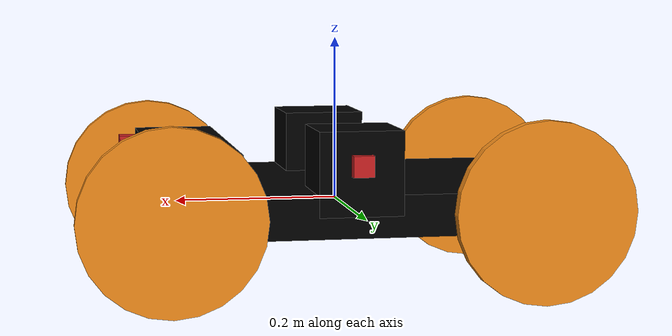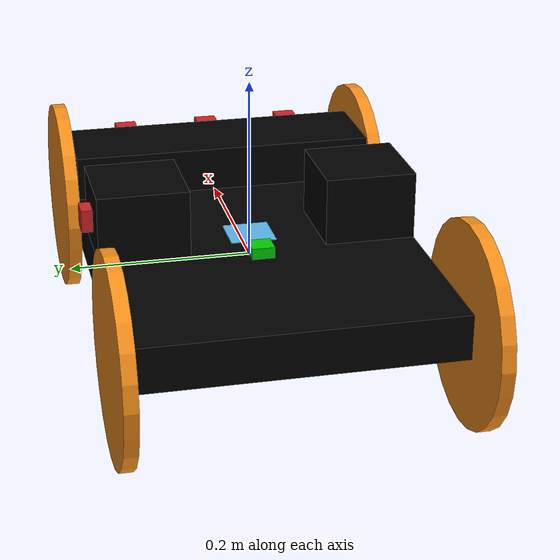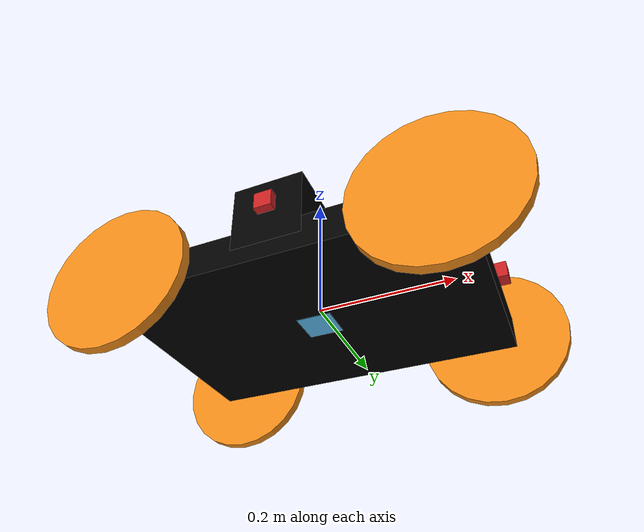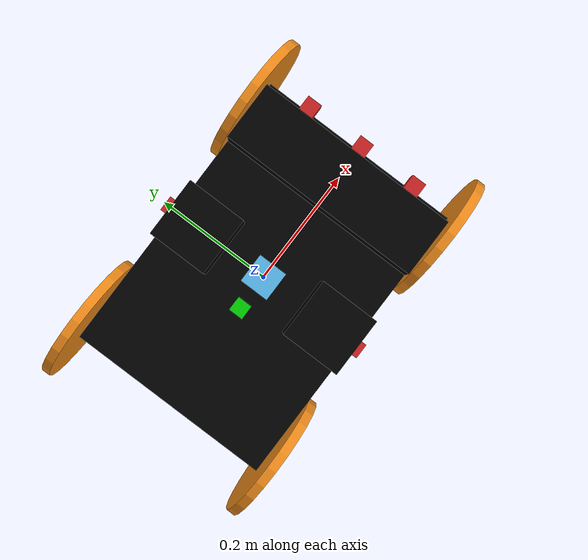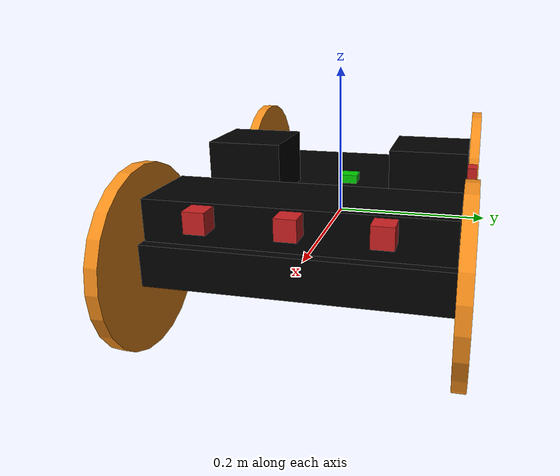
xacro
<?xml version="1.0" ?>

<robot name="robot_1" xmlns:xacro="https://www.ros.org/wiki/xacro" >

  <!-- Defining global properties of robot -->

  <xacro:property name="wheel_r" value="0.11"/>
  <xacro:property name="wheel_w" value="0.015"/>
  <xacro:property name="body_h" value="0.05"/>
  <xacro:property name="body_w" value="0.35"/>
  <xacro:property name="body_l" value="0.5"/>

  <!-- Including xacro files for plugins, macros, and materials -->

  <xacro:include filename = "$(find robot_1_description)/urdf/materials.xacro"/>
  <xacro:include filename = "$(find robot_1_description)/urdf/macros.xacro"/>
  <xacro:include filename = "$(find robot_1_description)/urdf/plugins/camera.xacro"/>
  <xacro:include filename = "$(find robot_1_description)/urdf/plugins/skid_steer_drive.xacro"/>
  <xacro:include filename = "$(find robot_1_description)/urdf/plugins/imu.xacro"/>
  <xacro:include filename = "$(find robot_1_description)/urdf/plugins/lazer_sensor.xacro"/>
  <xacro:include filename = "$(find robot_1_description)/urdf/plugins/kinect.xacro"/>
  <xacro:include filename = "$(find robot_1_description)/urdf/plugins/gps.xacro"/>
  <xacro:include filename = "$(find robot_1_description)/urdf/plugins/ultrasonic_sensor.xacro"/>

  <!-- Making the body of the 4 wheeled robot -->

  <gazebo reference="link_chassis">
    <material>Gazebo/Black</material>
    <mu1>0.2</mu1>
    <mu2>0.2</mu2>
  </gazebo>

  <link name="link_chassis">

    <visual>
      <geometry>
        <box size="${body_l} ${body_w} ${body_h}"/>
      </geometry>
      <material name="black"/>
    </visual>

    <collision>
      <geometry>
        <box size="${body_l} ${body_w} ${body_h}"/>
      </geometry>
    </collision>

    <inertial>
      <mass value="1"/>
      <inertia
        ixy="0"
        ixz="0"
        iyy="${(1/12) * (body_l * body_l + body_h * body_h)}"
        ixx="${(1/12) * ((body_w * body_w) + (body_h * body_h))}"
        iyz="0"
        izz="${(1/12) * (body_w * body_w + body_l * body_l)}"/>
    </inertial>

  </link>

  <!-- Linking and joining Front Right wheel -->

  <xacro:wheel_linking name = "FR_wheel" radius = "${wheel_r}" width = "${wheel_w}" mass = "0.3"/>

  <joint name = "FR_joint" type = "continuous">
    <parent link = "link_chassis"/>
    <child link = "FR_wheel"/>
    <axis xyz = "0 0 1"/>
    <origin xyz="${body_l/2 - 0.03} -${body_w/2 + wheel_w/2} 0" rpy="${pi/2} 0 0" />
    <dynamic friction="0.1"/>
  </joint>

  <!-- Linking and joining Front Left wheel -->

  <xacro:wheel_linking name = "FL_wheel" radius = "${wheel_r}" width = "${wheel_w}" mass = "0.3"/>

  <joint name = "FL_joint" type = "continuous">
    <parent link = "link_chassis"/>
    <child link = "FL_wheel"/>
    <axis xyz = "0 0 1"/>
    <origin xyz="${body_l/2 - 0.03} ${body_w/2 + wheel_w/2} 0" rpy="${pi/2} 0 0" />
    <dynamic friction="0.1"/>
  </joint>

  <!-- Linking and joining Back Right wheel -->

  <xacro:wheel_linking name = "BR_wheel" radius = "${wheel_r}" width = "${wheel_w}" mass = "0.3"/>

  <joint name = "BR_joint" type = "continuous">
    <parent link = "link_chassis"/>
    <child link = "BR_wheel"/>
    <axis xyz = "0 0 1"/>
    <origin xyz="-${body_l/2 - 0.03} -${body_w/2 + wheel_w/2} 0" rpy="${pi/2} 0 0" />
    <dynamic friction="0.1"/>
  </joint>

  <!-- Linking and joining Back Left wheel -->

  <xacro:wheel_linking name = "BL_wheel" radius = "${wheel_r}" width = "${wheel_w}" mass = "0.3"/>

  <joint name = "BL_joint" type = "continuous">
    <parent link = "link_chassis"/>
    <child link = "BL_wheel"/>
    <axis xyz = "0 0 1"/>
    <origin xyz="-${body_l/2 - 0.03} ${body_w/2 + wheel_w/2} 0" rpy="${pi/2} 0 0" />
    <dynamic friction="0.1"/>
  </joint>

  <!-- linking and joining for elevating front sensors -->

  <gazebo reference="front_sensor_base">
    <material>Gazebo/Black</material>
    <mu1>0.2</mu1>
    <mu2>0.2</mu2>
  </gazebo>

  <link name="front_sensor_base">

    <visual>
      <geometry>
        <box size="${body_l / 5} ${body_w - 0.003} ${body_h}"/>
      </geometry>
      <material name="black"/>
    </visual>

    <collision>
      <geometry>
        <box size="${body_l / 5} ${body_w - 0.003} ${body_h}"/>
      </geometry>
    </collision>

    <inertial>
      <mass value="1"/>
      <inertia
        ixy="0"
        ixz="0"
        iyy="${(1/12) * (body_l / 5 * body_l / 5 + (body_h)* (body_h))}"
        ixx="${(1/12) * (((body_w - 0.003) * (body_w - 0.003)) + ((body_h) * (body_h)))}"
        iyz="0"
        izz="${(1/12) * ((body_w - 0.003) * (body_w - 0.003) + body_l / 5 * body_l / 5)}"/>
    </inertial>

  </link>

  <joint name = "front_sensor_base_joint" type = "fixed">
    <parent link = "link_chassis"/>
    <child link = "front_sensor_base"/>
    <axis xyz = "0 1 0"/>
    <origin xyz="${body_l/2 - (body_l / 10) - 0.0125} 0 ${body_h / 2 + ((body_h) / 2)}" rpy="0 0 0" />
  </joint>

  <!-- linking and joining for elevating right sensors -->

  <gazebo reference="right_sensor_base">
    <material>Gazebo/Black</material>
    <mu1>0.2</mu1>
    <mu2>0.2</mu2>
  </gazebo>

  <link name="right_sensor_base">

    <visual>
      <geometry>
        <box size="${body_l / 5} ${body_l / 5} ${body_l / 5}"/>
      </geometry>
      <material name="black"/>
    </visual>

    <collision>
      <geometry>
        <box size="${body_l / 5} ${body_l / 5} ${body_l / 5}"/>
      </geometry>
    </collision>

    <inertial>
      <mass value="1"/>
      <inertia
        ixy="0"
        ixz="0"
        iyy="${(1/12) * ((body_l / 5 * body_l / 5) + (body_l / 5 * body_l / 5))}"
        ixx="${(1/12) * ((body_l / 5 * body_l / 5) + (body_l / 5 * body_l / 5))}"
        iyz="0"
        izz="${(1/12) * ((body_l / 5 * body_l / 5) + (body_l / 5 * body_l / 5))}"/>
    </inertial>

  </link>

  <joint name = "right_sensor_base_joint" type = "fixed">
    <parent link = "link_chassis"/>
    <child link = "right_sensor_base"/>
    <axis xyz = "0 1 0"/>
    <origin xyz="0 ${body_w / 2 - body_l / 10} ${body_h / 2 + ((body_h) / 2)}" rpy="0 0 0" />
  </joint>

  <!-- linking and joining for elevating left sensors -->

  <gazebo reference="left_sensor_base">
    <material>Gazebo/Black</material>
    <mu1>0.2</mu1>
    <mu2>0.2</mu2>
  </gazebo>

  <link name="left_sensor_base">

    <visual>
      <geometry>
        <box size="${body_l / 5} ${body_l / 5} ${body_l / 5}"/>
      </geometry>
      <material name="black"/>
    </visual>

    <collision>
      <geometry>
        <box size="${body_l / 5} ${body_l / 5} ${body_l / 5}"/>
      </geometry>
    </collision>

    <inertial>
      <mass value="1"/>
      <inertia
        ixy="0"
        ixz="0"
        iyy="${(1/12) * ((body_l / 5 * body_l / 5) + (body_l / 5 * body_l / 5))}"
        ixx="${(1/12) * ((body_l / 5 * body_l / 5) + (body_l / 5 * body_l / 5))}"
        iyz="0"
        izz="${(1/12) * ((body_l / 5 * body_l / 5) + (body_l / 5 * body_l / 5))}"/>
    </inertial>

  </link>

  <joint name = "left_sensor_base_joint" type = "fixed">
    <parent link = "link_chassis"/>
    <child link = "left_sensor_base"/>
    <axis xyz = "0 1 0"/>
    <origin xyz="0 -${body_w / 2 - body_l / 10} ${body_h / 2 + ((body_h) / 2)}" rpy="0 0 0" />
  </joint>

</robot>

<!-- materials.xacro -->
<robot name="robot_1" xmlns:xacro="https://www.ros.org/wiki/xacro">

  <material name="black">
    <color rgba="0.0 0.0 0.0 1.0"/>
  </material>
    <material name="white">
    <color rgba="1.0 1.0 1.0 1.0"/>
  </material>
  <material name="blue">
    <color rgba="0.203125 0.23828125 0.28515625 1.0"/>
  </material>
  <material name="green">
    <color rgba="0.0 0.8 0.0 1.0"/>
  </material>
  <material name="orange">
    <color rgba="1.0 0.423529411765 0.0392156862745 1.0"/>
  </material>
  <material name="red">
    <color rgba="0.80078125 0.12890625 0.1328125 1.0"/>
  </material>

</robot>

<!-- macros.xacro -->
<robot xmlns:xacro="https://www.ros.org/wiki/xacro">

    <!-- Macro for linking wheel -->

    <xacro:macro name="wheel_linking" params="name radius width mass">
        <gazebo reference="${name}">
            <material>Gazebo/Orange</material>
            <mu1>0.8</mu1>
            <mu2>0.8</mu2>
        </gazebo>

        <link name="${name}">

            <visual>
                <geometry>
                    <cylinder length =" ${width}" radius = "${radius}"/>
                </geometry>
            </visual>

            <collision>
                <geometry>
                    <cylinder length=  "${width}" radius = "${radius}"/>
                </geometry>
            </collision>

            <inertial>
                <mass value = "${mass}"/>
                <inertia ixx="${(1/12) * mass * (3 * radius * radius + width * width)}" ixy="0" ixz="0" iyy="${(1/12) * mass * (3 * radius * radius + width * width)}" iyz="0" izz="${(1/2) * mass * radius * radius}"/>
            </inertial>

        </link>

    </xacro:macro>

</robot>

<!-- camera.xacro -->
<robot xmlns:xacro = "https://www.ros.org/wiki/xacro">

  <xacro:property name="camera_size" value="0.025"/>

  <!-- Camera -->

    <link name="camera_link">
        <collision>
          <origin xyz="0 0 0" rpy="0 0 0"/>
          <geometry>
            <box size="${camera_size} ${camera_size} ${camera_size}"/>
          </geometry>
        </collision>

    <visual>
      <origin xyz="0 0 0" rpy="0 0 0"/>
      <geometry>
        <box size="${camera_size} ${camera_size} ${camera_size}"/>
      </geometry>
      <material name="red"/>
    </visual>

    <inertial>
      <mass value="0.5" />
      <origin xyz="0 0 0" rpy="0 0 0"/>
      <inertia ixx="${(camera_size * camera_size) / 6}" ixy="0" ixz="0" iyy="${(camera_size * camera_size) / 6}" iyz="0" izz="${(camera_size * camera_size) / 6}" />
    </inertial>
  </link>

  <!-- Joint -->

  <joint name="camera_joint" type="fixed">
    <axis xyz="0 1 0" />
    <origin xyz="${(body_l / 2)} -0.1 0.06" rpy="0 0 0"/>
    <parent link="link_chassis"/>
    <child link="camera_link"/>
  </joint>

  <!-- Gazebo tags -->

  <gazebo reference="camera_link">
    <material>Gazebo/Red</material>
    <sensor type="camera" name="camera">

      <update_rate>30.0</update_rate>

      <camera name="head">
        <horizontal_fov>1.3962634</horizontal_fov>
        <image>
          <width>800</width>
          <height>800</height>
          <format>R8G8B8</format>
        </image>
        <clip>
          <near>0.02</near>
          <far>300</far>
        </clip>
        <noise>
          <type>gaussian</type>
          <mean>0.0</mean>
          <stddev>0.007</stddev>
        </noise>
      </camera>

      <plugin name="camera_controller" filename="libgazebo_ros_camera.so">
        <alwaysOn>true</alwaysOn>
        <updateRate>0.0</updateRate>
        <cameraName>robot_1/camera</cameraName>
        <imageTopicName>image_raw</imageTopicName>
        <cameraInfoTopicName>camera_info</cameraInfoTopicName>
        <frameName>camera_link</frameName>
        <hackBaseline>0.07</hackBaseline>
        <distortionK1>0.0</distortionK1>
        <distortionK2>0.0</distortionK2>
        <distortionK3>0.0</distortionK3>
        <distortionT1>0.0</distortionT1>
        <distortionT2>0.0</distortionT2>
      </plugin>

    </sensor>

  </gazebo>

</robot>

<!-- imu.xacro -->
<robot xmlns:xacro = "https://www.ros.org/wiki/xacro">

    <xacro:property name = "imu_size" value = "0.051"/>

    <!-- Link for IMU -->

    <link name = "imu_link">
        <collision>
            <origin xyz = "0 0 0" rpy = "0 0 0"/>
            <geometry>
                <box size = "${imu_size} ${imu_size} ${imu_size}"/>
            </geometry>
        </collision>

        <inertial>
            <mass value = "0.0001"/>
            <origin rpy="0 0 0" xyz="0 0 0"/>
            <inertia
                ixx = "${(0.0001 * imu_size * imu_size) / 6}"
                ixy = "0"
                ixz = "0"
                iyy = "${(0.0001 * imu_size * imu_size) / 6}"
                iyz = "0"
                izz = "${(0.0001 * imu_size * imu_size) / 6}"
                    />
        </inertial>

        <visual>
            <origin xyz = "0 0 0" rpy = "0 0 0"/>
            <geometry>
                <box size = "${imu_size} ${imu_size} ${imu_size}"/>
            </geometry>
        </visual>
    </link>

    <!-- Joining IMU with link_chassis -->

    <joint name = "imu_joint" type = "fixed">
        <axis xyz="0 1 0"/>
        <origin xyz="0 0 0" rpy = "0 0 0"/>
        <parent link="link_chassis"/>
        <child link="imu_link"/>
    </joint>

    <!-- Gazebo tags -->

    <gazebo reference="imu_link">
        <gravity>true</gravity>
        <sensor name="imu_sensor" type="imu">
        <always_on>true</always_on>
        <update_rate>100</update_rate>
        <visualize>true</visualize>
        <topic>imu_data</topic>

        <plugin filename="libgazebo_ros_imu_sensor.so" name="imu_plugin">
            <topicName>imu_data</topicName>
            <bodyName>imu_link</bodyName>
            <updateRateHZ>10.0</updateRateHZ>
            <gaussianNoise>0.0</gaussianNoise>
            <xyzOffset>0 0 0</xyzOffset>
            <rpyOffset>0 ${pi/2} 0</rpyOffset>
            <frameName>imu_link</frameName>
            <initialOrientationAsReference>false</initialOrientationAsReference>
      </plugin>

      <pose>0 0 0 0 0 0</pose>
    </sensor>
  </gazebo>

  </robot>

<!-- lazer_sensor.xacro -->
<robot name="robot_1" xmlns:xacro="https://www.ros.org/wiki/xacro" >

    <!-- Making Lazer Link-->

    <link name="lazer_link">
        <collision>
            <origin xyz="0 0 0" rpy="0 0 0"/>
            <geometry>
                <box size="0.025 0.025 0.025"/>
            </geometry>
        </collision>

        <visual>
            <origin xyz="0 0 0" rpy="0 0 0"/>
            <geometry>
                <box size="0.025 0.025 0.025"/>
            </geometry>
            <material name="red"/>
        </visual>

        <inertial>
            <mass value="1e-5" />
            <origin xyz="0 0 0" rpy="0 0 0"/>
            <inertia ixx="1e-6" ixy="0" ixz="0" iyy="1e-6" iyz="0" izz="1e-6" />
        </inertial>
    </link>

    <!-- Joint for lazer_link and link_chassis -->

    <joint name="lazer_link" type="fixed">
        <axis xyz="0 1 0" />
        <origin xyz="${(body_l / 2)} 0.1 0.06" rpy="0 0 0"/>
        <parent link="link_chassis"/>
        <child link="lazer_link"/>
    </joint>

    <!-- Gazebo information -->

    <gazebo reference="lazer_link">
    <material>Gazebo/Red</material>
    <sensor type="gpu_ray" name="head_hokuyo_sensor">

      <visualize>true</visualize>
      <update_rate>40</update_rate>
      <ray>
        <scan>
          <horizontal>
            <samples>720</samples>
            <resolution>1</resolution>
            <min_angle>-${pi/4}</min_angle>
            <max_angle>${pi/4}</max_angle>
          </horizontal>
        </scan>
        <range>
          <min>0.10</min>
          <max>30.0</max>
          <resolution>0.01</resolution>
        </range>
        <noise>
          <type>gaussian</type>
          <mean>0.0</mean>
          <stddev>0.01</stddev>
        </noise>
      </ray>
      <plugin name="gazebo_ros_head_hokuyo_controller" filename="libgazebo_ros_gpu_laser.so">
        <topicName>/robot_1/laser/scan</topicName>
        <frameName>lazer_link</frameName>
      </plugin>
    </sensor>
  </gazebo>
</robot>

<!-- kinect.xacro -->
<robot xmlns:xacro = "https://www.ros.org/wiki/xacro">

    <xacro:property name="kinect_size" value="0.025"/>

    <!-- Making a kinect Link-->

    <link name="kinect_link">
        <collision>
          <origin xyz="0 0 0" rpy="0 0 0"/>
          <geometry>
            <box size="${kinect_size} ${kinect_size} ${kinect_size}"/>
          </geometry>
        </collision>

        <visual>
            <origin xyz="0 0 0" rpy="0 0 0"/>
            <geometry>
                <box size="${kinect_size} ${kinect_size} ${kinect_size}"/>
            </geometry>
            <material name="red"/>
        </visual>

        <inertial>
            <mass value="0.5" />
            <origin xyz="0 0 0" rpy="0 0 0"/>
            <inertia ixx="${(kinect_size * kinect_size) / 6}" ixy="0" ixz="0" iyy="${(kinect_size * kinect_size) / 6}" iyz="0" izz="${(kinect_size * kinect_size) / 6}" />
        </inertial>
    </link>

    <!-- Forming joint for kinect and link_chassis -->

    <joint name="kinect_joint" type="fixed">
        <axis xyz="0 1 0" />
        <origin xyz="${(body_l / 2)} 0 0.06" rpy="0 0 0"/>
        <parent link="link_chassis"/>
        <child link="kinect_link"/>
    </joint>

    <!-- Gazebo tags -->

    <gazebo reference="kinect_link">

        <sensor name="kinect_link_camera" type="depth">

            <update_rate>20</update_rate>

            <camera>
                <horizontal_fov>1.3962634</horizontal_fov>
                <image>
                    <width>800</width>
                    <height>800</height>
                    <format>R8G8B8</format>
                </image>
                <clip>
                    <near>0.05</near>
                    <far>3</far>
                </clip>
            </camera>

            <plugin name="kinect_link_controller" filename="libgazebo_ros_openni_kinect.so">
                <baseline>0.2</baseline>
                <alwaysOn>true</alwaysOn>
                <updateRate>1.0</updateRate>
                <cameraName>kinect_link_camera_ir</cameraName>
                <imageTopicName>/kinect_link_camera/color/image_raw</imageTopicName>
                <cameraInfoTopicName>/kinect_link_camera/color/camera_info</cameraInfoTopicName>
                <depthImageTopicName>/kinect_link_camera/depth/image_raw</depthImageTopicName>
                <depthImageCameraInfoTopicName>/kinect_link_camera/depth/camera_info</depthImageCameraInfoTopicName>
                <pointCloudTopicName>/kinect_link_camera/depth/points</pointCloudTopicName>
                <frameName>kinect_link</frameName>
                <pointCloudCutoff>0.5</pointCloudCutoff>
                <pointCloudCutoffMax>3.0</pointCloudCutoffMax>
                <distortionK1>0.00000001</distortionK1>
                <distortionK2>0.00000001</distortionK2>
                <distortionK3>0.00000001</distortionK3>
                <distortionT1>0.00000001</distortionT1>
                <distortionT2>0.00000001</distortionT2>
                <CxPrime>0</CxPrime>
                <Cx>0</Cx>
                <Cy>0</Cy>
                <focalLength>0</focalLength>
                <hackBaseline>0</hackBaseline>
            </plugin>

        </sensor>

    </gazebo>

</robot>

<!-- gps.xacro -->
<robot xmlns:xacro = "https://www.ros.org/wiki/xacro">

  <!-- Making  GPS Link -->

    <link name="gps_link">
        <collision>
        <origin xyz="0 0 0" rpy="0 0 0"/>
        <geometry>
            <box size="0.025 0.025 0.025"/>
        </geometry>
        </collision>

        <visual>
        <origin xyz="0 0 0" rpy="0 0 0"/>
        <geometry>
            <box size="0.025 0.025 0.025"/>
        </geometry>
        <material name="green"/>
        </visual>

        <inertial>
        <origin xyz="0 0 1" rpy="0 0 0"/>
        <mass value="1"/>
        <inertia
            ixx="1.0" ixy="0.0" ixz="0.0"
            iyy="1.0" iyz="0.0"
            izz="1.0"/>
        </inertial>
    </link>

    <!-- Joining gps with link_chassis -->

        <joint name="gps_joint" type="fixed">
            <parent link="link_chassis"/>
            <origin xyz="-0.06 0 0.025" rpy="0 0 0"/>
            <child link="gps_link"/>
        </joint>

    <!--  Gazebo Tags -->

        <gazebo referance = "gps_link">
            <material>Gazebo/Green</material>
            <plugin name="gazebo_ros_gps" filename="libhector_gazebo_ros_gps.so">
                <updateRate>4.0</updateRate>
                <bodyName>gps_link</bodyName>
                <frameId>gps_link</frameId>
                <topicName>/gps</topicName>
                <velocityTopicName>/gps/velocity</velocityTopicName>
                <referenceLatitude>-30.06022459407145675</referenceLatitude>
                <referenceLongitude>-51.173913575780311191</referenceLongitude>
                <referenceHeading>90</referenceHeading>
                <referenceAltitude>10</referenceAltitude>
                <offset>0 0 0</offset>
                <drift>0.001 0.001 0.001</drift>
                <gaussianNoise>0.025 0.025 0.025</gaussianNoise>
                <velocityDrift>0.001 0.001 0.001</velocityDrift>
                <velocityGaussianNoise>0.5 0.5 0.5</velocityGaussianNoise>
            </plugin>
    </gazebo>
</robot>

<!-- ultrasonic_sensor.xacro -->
<robot xmlns:xacro = "https://www.ros.org/wiki/xacro">

<xacro:property name="ultrasonic_sensor_size" value="0.025"/>

  <!-- Ultrasonic Sensor Right -->

  <!-- Linking right sensor-->

    <link name="ultrasonic_right_link">
        <collision>
          <origin xyz="0 0 0" rpy="0 0 0"/>
          <geometry>
            <box size="${ultrasonic_sensor_size} ${ultrasonic_sensor_size} ${ultrasonic_sensor_size}"/>
          </geometry>
        </collision>

    <visual>
      <origin xyz="0 0 0" rpy="0 0 0"/>
      <geometry>
        <box size="${ultrasonic_sensor_size} ${ultrasonic_sensor_size} ${ultrasonic_sensor_size}"/>
      </geometry>
      <material name="red"/>
    </visual>

    <inertial>
      <mass value="0.5" />
      <origin xyz="0 0 0" rpy="0 0 0"/>
      <inertia ixx="${(ultrasonic_sensor_size * ultrasonic_sensor_size) / 6}" ixy="0" ixz="0" iyy="${(ultrasonic_sensor_size * ultrasonic_sensor_size) / 6}" iyz="0" izz="${(ultrasonic_sensor_size * ultrasonic_sensor_size) / 6}" />
    </inertial>
  </link>

  <!-- Joint -->

  <joint name="ultrasonic_right_joint" type="fixed">
    <axis xyz="0 1 0" />
    <origin xyz="0 ${body_w / 2} 0.06" rpy="0 0 ${pi/2}"/>
    <parent link="link_chassis"/>
    <child link="ultrasonic_right_link"/>
  </joint>

  <!-- Gazebo tags -->

  <gazebo reference = "ultrasonic_right_link">
    <sensor type="ray" name="ultrasonic_right">
      <update_rate>5</update_rate>
      <always_on> true </always_on>
      <visualize> true </visualize>
      <ray>
        <scan>
          <horizontal>
            <samples>5</samples>
            <resolution>1.0</resolution>
            <min_angle>-${pi/4}</min_angle>
            <max_angle>${pi/4}</max_angle>
          </horizontal>
          <vertical>
            <samples>5</samples>
            <resolution>1.0</resolution>
            <min_angle>-${pi/4}</min_angle>
            <max_angle>${pi/4}</max_angle>
          </vertical>
        </scan>
        <range>
          <min>0.1</min>
          <max>5.0</max>
          <resolution>0.01</resolution>
        </range>
      </ray>

      <plugin filename="libhector_gazebo_ros_sonar.so" name="ultrasonic_sensor_right">

        <gaussianNoise> 0.005 </gaussianNoise>
        <topicName> /sonar_data_right</topicName>
        <frameId> ultrasonic_right_link </frameId>

      </plugin>

    </sensor>

  </gazebo>

  <!-- Ultrasonic Sensor Left -->

  <!-- Linking left sensor-->

  <link name="ultrasonic_left_link">

        <collision>
          <origin xyz="0 0 0" rpy="0 0 0"/>
          <geometry>
            <box size="${ultrasonic_sensor_size} ${ultrasonic_sensor_size} ${ultrasonic_sensor_size}"/>
          </geometry>
        </collision>

    <visual>
      <origin xyz="0 0 0" rpy="0 0 0"/>
      <geometry>
        <box size="${ultrasonic_sensor_size} ${ultrasonic_sensor_size} ${ultrasonic_sensor_size}"/>
      </geometry>
      <material name="red"/>
    </visual>

    <inertial>
      <mass value="0.5" />
      <origin xyz="0 0 0" rpy="0 0 0"/>
      <inertia ixx="${(ultrasonic_sensor_size * ultrasonic_sensor_size) / 6}" ixy="0" ixz="0" iyy="${(ultrasonic_sensor_size * ultrasonic_sensor_size) / 6}" iyz="0" izz="${(ultrasonic_sensor_size * ultrasonic_sensor_size) / 6}" />
    </inertial>
  </link>

  <!-- Joint -->

  <joint name="ultrasonic_left_joint" type="fixed">
    <axis xyz="0 1 0" />
    <origin xyz="0 -${body_w / 2} 0.06" rpy="0 0 -${pi/2}"/>
    <parent link="link_chassis"/>
    <child link="ultrasonic_left_link"/>
  </joint>

  <!-- Gazebo tags -->

  <gazebo reference = "ultrasonic_left_link">
    <sensor type="ray" name="ultrasonic_left">
      <update_rate>5</update_rate>
      <pose>0 0 0 0 0 0</pose>
      <always_on> true </always_on>
      <visualize> true </visualize>
      <ray>
        <scan>
          <horizontal>
            <samples>5</samples>
            <resolution>1.0</resolution>
            <min_angle>-${pi/4}</min_angle>
            <max_angle>${pi/4}</max_angle>
          </horizontal>
          <vertical>
            <samples>5</samples>
            <resolution>1</resolution>
            <min_angle>-${pi/4}</min_angle>
            <max_angle>${pi/4}</max_angle>
          </vertical>
        </scan>
        <range>
          <min>0.1</min>
          <max>5.0</max>
          <resolution>0.01</resolution>
        </range>
      </ray>

      <plugin filename="libhector_gazebo_ros_sonar.so" name="ultrasonic_sensor_left">

        <topicName> /sonar_data_left </topicName>
        <frameId> ultrasonic_left_link </frameId>

      </plugin>

    </sensor>

  </gazebo>

</robot>
